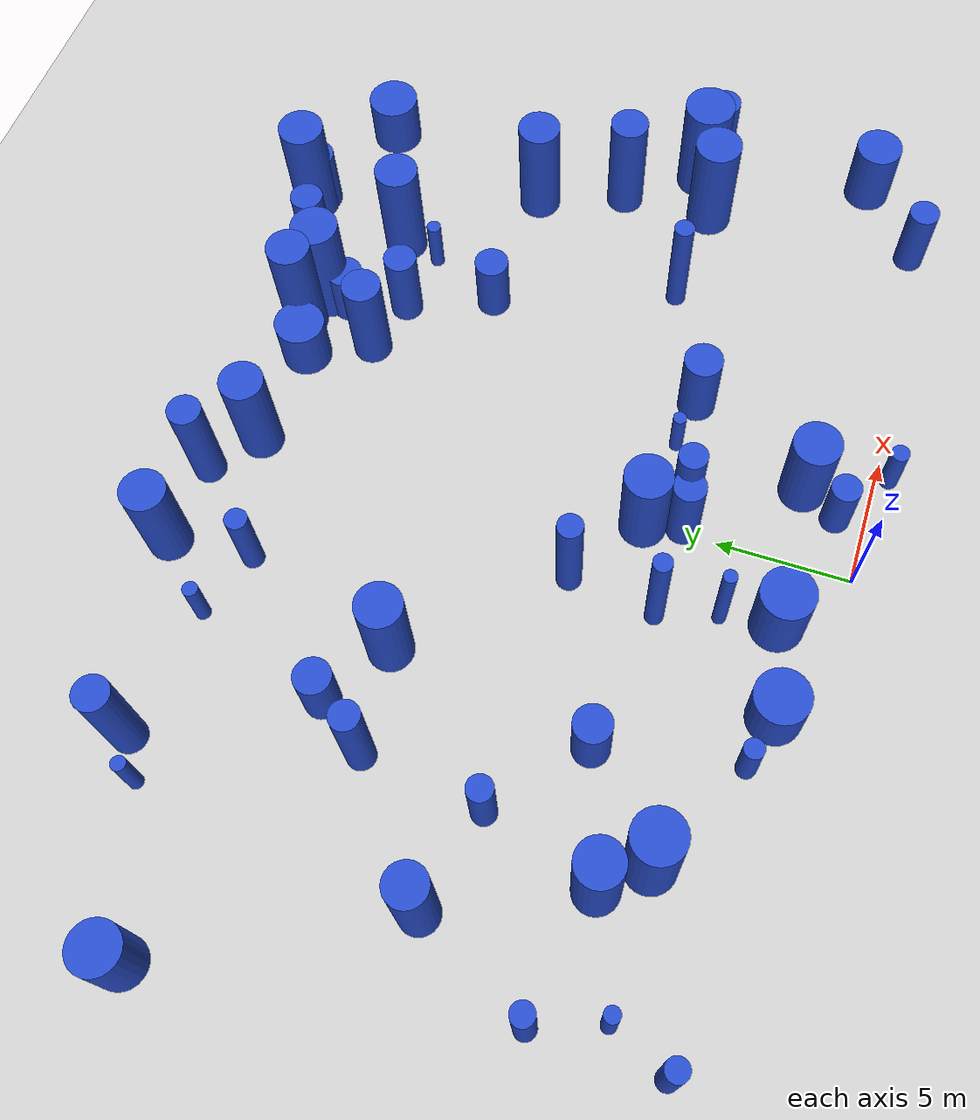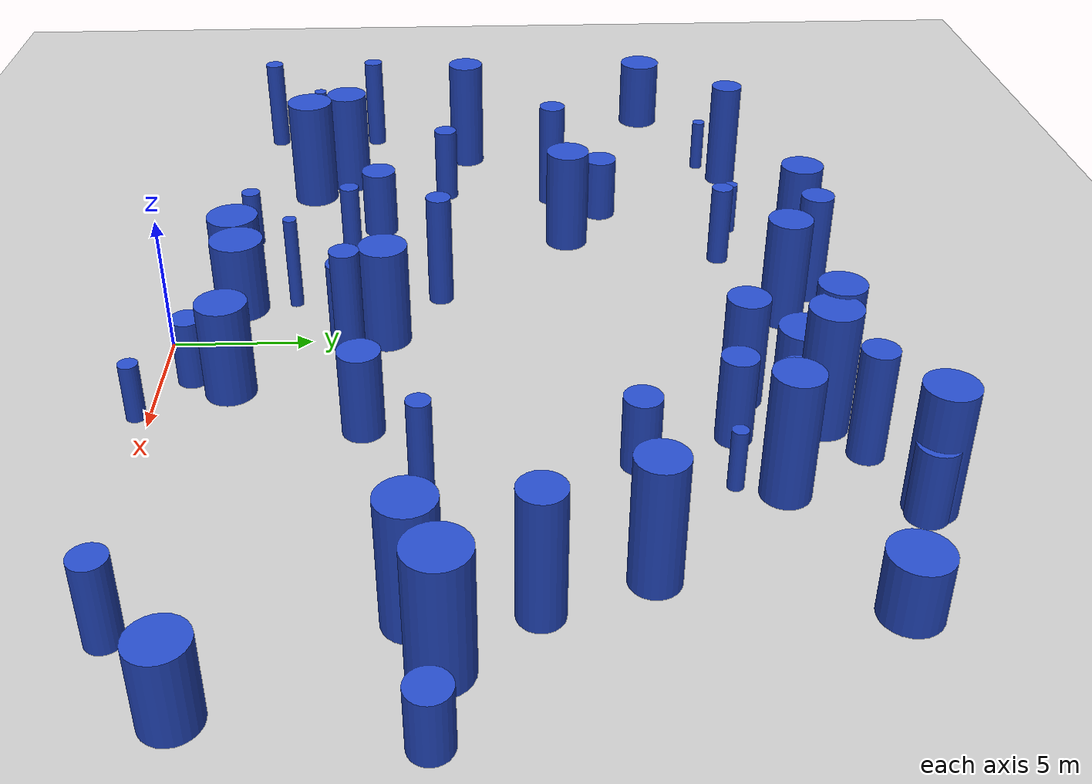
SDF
<sdf version="1.7">
 <world name="default">
  <model name="ground_plane">
   <static>1</static>
   <link name="link">
    <collision name="collision">
     <geometry><plane><normal>0 0 1</normal><size>100 100</size></plane></geometry>
     <surface>
      <contact><collide_bitmask>65535</collide_bitmask></contact>
      <friction><ode><mu>100</mu><mu2>50</mu2></ode></friction>
     </surface>
    </collision>
    <visual name="visual">
     <cast_shadows>0</cast_shadows>
     <geometry><plane><normal>0 0 1</normal><size>100 100</size></plane></geometry>
     <material>
      <script><uri>file://media/materials/scripts/gazebo.material</uri><name>Gazebo/Grey</name></script>
     </material>
    </visual>
   </link>
  </model>
  <model name="14">
   <static>0</static>
   <link name="link">
    <inertial>
     <mass>2</mass>
     <inertia>
      <ixx>0.836303</ixx>
      <ixy>0</ixy>
      <ixz>0</ixz>
      <iyy>0.836303</iyy>
      <iyz>0</iyz>
      <izz>0.0702342</izz>
     </inertia>
    </inertial>
    <collision name="collision">
     <geometry><cylinder><length>2.19251</length><radius>0.265017</radius></cylinder></geometry>
     <surface><contact><collide_without_contact>1</collide_without_contact></contact></surface>
    </collision>
    <visual name="visual">
     <geometry><cylinder><length>2.19251</length><radius>0.265017</radius></cylinder></geometry>
     <material>
      <script><uri>file://media/materials/scripts/gazebo.material</uri><name>Gazebo/Blue</name></script>
     </material>
    </visual>
    <gravity>0</gravity>
   </link>
   <pose>-14.3214 21.1932 1.09626 0 -0 0</pose>
  </model>
  <model name="32">
   <static>0</static>
   <link name="link">
    <inertial>
     <mass>2</mass>
     <inertia><ixx>3.14804</ixx><ixy>0</ixy><ixz>0</ixz><iyy>3.14804</iyy><iyz>0</iyz><izz>0.2772</izz></inertia>
    </inertial>
    <collision name="collision">
     <geometry><cylinder><length>4.24931</length><radius>0.526498</radius></cylinder></geometry>
     <surface><contact><collide_without_contact>1</collide_without_contact></contact></surface>
    </collision>
    <visual name="visual">
     <geometry><cylinder><length>4.24931</length><radius>0.526498</radius></cylinder></geometry>
     <material>
      <script><uri>file://media/materials/scripts/gazebo.material</uri><name>Gazebo/Blue</name></script>
     </material>
    </visual>
    <gravity>0</gravity>
   </link>
   <pose>0.903538 6.47443 2.12466 0 -0 0</pose>
  </model>
  <model name="58">
   <static>0</static>
   <link name="link">
    <inertial>
     <mass>2</mass>
     <inertia><ixx>1.90136</ixx><ixy>0</ixy><ixz>0</ixz><iyy>1.90136</iyy><iyz>0</iyz><izz>0.784577</izz></inertia>
    </inertial>
    <collision name="collision">
     <geometry><cylinder><length>3.00905</length><radius>0.885763</radius></cylinder></geometry>
     <surface><contact><collide_without_contact>1</collide_without_contact></contact></surface>
    </collision>
    <visual name="visual">
     <geometry><cylinder><length>3.00905</length><radius>0.885763</radius></cylinder></geometry>
     <material>
      <script><uri>file://media/materials/scripts/gazebo.material</uri><name>Gazebo/Blue</name></script>
     </material>
    </visual>
    <gravity>0</gravity>
   </link>
   <pose>-19.7092 19.1062 1.50453 0 -0 0</pose>
  </model>
  <model name="60">
   <static>0</static>
   <link name="link">
    <inertial>
     <mass>2</mass>
     <inertia><ixx>2.88942</ixx><ixy>0</ixy><ixz>0</ixz><iyy>2.88942</iyy><iyz>0</iyz><izz>0.374804</izz></inertia>
    </inertial>
    <collision name="collision">
     <geometry><cylinder><length>4.02643</length><radius>0.612213</radius></cylinder></geometry>
     <surface><contact><collide_without_contact>1</collide_without_contact></contact></surface>
    </collision>
    <visual name="visual">
     <geometry><cylinder><length>4.02643</length><radius>0.612213</radius></cylinder></geometry>
     <material>
      <script><uri>file://media/materials/scripts/gazebo.material</uri><name>Gazebo/Blue</name></script>
     </material>
    </visual>
    <gravity>0</gravity>
   </link>
   <pose>7.44601 23.3742 2.01321 0 -0 0</pose>
  </model>
  <model name="69">
   <static>0</static>
   <link name="link">
    <inertial>
     <mass>2</mass>
     <inertia><ixx>3.22963</ixx><ixy>0</ixy><ixz>0</ixz><iyy>3.22963</iyy><iyz>0</iyz><izz>0.217421</izz></inertia>
    </inertial>
    <collision name="collision">
     <geometry><cylinder><length>4.3273</length><radius>0.466285</radius></cylinder></geometry>
     <surface><contact><collide_without_contact>1</collide_without_contact></contact></surface>
    </collision>
    <visual name="visual">
     <geometry><cylinder><length>4.3273</length><radius>0.466285</radius></cylinder></geometry>
     <material>
      <script><uri>file://media/materials/scripts/gazebo.material</uri><name>Gazebo/Blue</name></script>
     </material>
    </visual>
    <gravity>0</gravity>
   </link>
   <pose>-2.92241 9.66779 2.16365 0 -0 0</pose>
  </model>
  <model name="83">
   <static>0</static>
   <link name="link">
    <inertial>
     <mass>2</mass>
     <inertia><ixx>3.76364</ixx><ixy>0</ixy><ixz>0</ixz><iyy>3.76364</iyy><iyz>0</iyz><izz>0.745798</izz></inertia>
    </inertial>
    <collision name="collision">
     <geometry><cylinder><length>4.51048</length><radius>0.863596</radius></cylinder></geometry>
     <surface><contact><collide_without_contact>1</collide_without_contact></contact></surface>
    </collision>
    <visual name="visual">
     <geometry><cylinder><length>4.51048</length><radius>0.863596</radius></cylinder></geometry>
     <material>
      <script><uri>file://media/materials/scripts/gazebo.material</uri><name>Gazebo/Blue</name></script>
     </material>
    </visual>
    <gravity>0</gravity>
   </link>
   <pose>10.1475 24.6467 2.25524 0 -0 0</pose>
  </model>
  <model name="86">
   <static>0</static>
   <link name="link">
    <inertial>
     <mass>2</mass>
     <inertia><ixx>1.70084</ixx><ixy>0</ixy><ixz>0</ixz><iyy>1.70084</iyy><iyz>0</iyz><izz>0.217344</izz></inertia>
    </inertial>
    <collision name="collision">
     <geometry><cylinder><length>3.09079</length><radius>0.466202</radius></cylinder></geometry>
     <surface><contact><collide_without_contact>1</collide_without_contact></contact></surface>
    </collision>
    <visual name="visual">
     <geometry><cylinder><length>3.09079</length><radius>0.466202</radius></cylinder></geometry>
     <material>
      <script><uri>file://media/materials/scripts/gazebo.material</uri><name>Gazebo/Blue</name></script>
     </material>
    </visual>
    <gravity>0</gravity>
   </link>
   <pose>-11.7966 9.82472 1.5454 0 -0 0</pose>
  </model>
  <model name="88">
   <static>0</static>
   <link name="link">
    <inertial>
     <mass>2</mass>
     <inertia><ixx>2.97237</ixx><ixy>0</ixy><ixz>0</ixz><iyy>2.97237</iyy><iyz>0</iyz><izz>0.674588</izz></inertia>
    </inertial>
    <collision name="collision">
     <geometry><cylinder><length>3.97624</length><radius>0.821333</radius></cylinder></geometry>
     <surface><contact><collide_without_contact>1</collide_without_contact></contact></surface>
    </collision>
    <visual name="visual">
     <geometry><cylinder><length>3.97624</length><radius>0.821333</radius></cylinder></geometry>
     <material>
      <script><uri>file://media/materials/scripts/gazebo.material</uri><name>Gazebo/Blue</name></script>
     </material>
    </visual>
    <gravity>0</gravity>
   </link>
   <pose>-5.84551 23.8684 1.98812 0 -0 0</pose>
  </model>
  <model name="108">
   <static>0</static>
   <link name="link">
    <inertial>
     <mass>2</mass>
     <inertia><ixx>2.89097</ixx><ixy>0</ixy><ixz>0</ixz><iyy>2.89097</iyy><iyz>0</iyz><izz>0.769265</izz></inertia>
    </inertial>
    <collision name="collision">
     <geometry><cylinder><length>3.87789</length><radius>0.877078</radius></cylinder></geometry>
     <surface><contact><collide_without_contact>1</collide_without_contact></contact></surface>
    </collision>
    <visual name="visual">
     <geometry><cylinder><length>3.87789</length><radius>0.877078</radius></cylinder></geometry>
     <material>
      <script><uri>file://media/materials/scripts/gazebo.material</uri><name>Gazebo/Blue</name></script>
     </material>
    </visual>
    <gravity>0</gravity>
   </link>
   <pose>-0.109157 7.73409 1.93895 0 -0 0</pose>
  </model>
  <model name="111">
   <static>0</static>
   <link name="link">
    <inertial>
     <mass>2</mass>
     <inertia><ixx>1.61305</ixx><ixy>0</ixy><ixz>0</ixz><iyy>1.61305</iyy><iyz>0</iyz><izz>0.331208</izz></inertia>
    </inertial>
    <collision name="collision">
     <geometry><cylinder><length>2.94697</length><radius>0.575506</radius></cylinder></geometry>
     <surface><contact><collide_without_contact>1</collide_without_contact></contact></surface>
    </collision>
    <visual name="visual">
     <geometry><cylinder><length>2.94697</length><radius>0.575506</radius></cylinder></geometry>
     <material>
      <script><uri>file://media/materials/scripts/gazebo.material</uri><name>Gazebo/Blue</name></script>
     </material>
    </visual>
    <gravity>0</gravity>
   </link>
   <pose>14.7173 0.789636 1.47349 0 -0 0</pose>
  </model>
  <model name="121">
   <static>0</static>
   <link name="link">
    <inertial>
     <mass>2</mass>
     <inertia>
      <ixx>0.701249</ixx>
      <ixy>0</ixy>
      <ixz>0</ixz>
      <iyy>0.701249</iyy>
      <iyz>0</iyz>
      <izz>0.0646593</izz>
     </inertia>
    </inertial>
    <collision name="collision">
     <geometry><cylinder><length>2.00338</length><radius>0.254282</radius></cylinder></geometry>
     <surface><contact><collide_without_contact>1</collide_without_contact></contact></surface>
    </collision>
    <visual name="visual">
     <geometry><cylinder><length>2.00338</length><radius>0.254282</radius></cylinder></geometry>
     <material>
      <script><uri>file://media/materials/scripts/gazebo.material</uri><name>Gazebo/Blue</name></script>
     </material>
    </visual>
    <gravity>0</gravity>
   </link>
   <pose>3.54133 7.47149 1.00169 0 -0 0</pose>
  </model>
  <model name="150">
   <static>0</static>
   <link name="link">
    <inertial>
     <mass>2</mass>
     <inertia><ixx>3.53297</ixx><ixy>0</ixy><ixz>0</ixz><iyy>3.53297</iyy><iyz>0</iyz><izz>0.946006</izz></inertia>
    </inertial>
    <collision name="collision">
     <geometry><cylinder><length>4.28484</length><radius>0.972629</radius></cylinder></geometry>
     <surface><contact><collide_without_contact>1</collide_without_contact></contact></surface>
    </collision>
    <visual name="visual">
     <geometry><cylinder><length>4.28484</length><radius>0.972629</radius></cylinder></geometry>
     <material>
      <script><uri>file://media/materials/scripts/gazebo.material</uri><name>Gazebo/Blue</name></script>
     </material>
    </visual>
    <gravity>0</gravity>
   </link>
   <pose>16.2141 9.86612 2.14242 0 -0 0</pose>
  </model>
  <model name="161">
   <static>0</static>
   <link name="link">
    <inertial>
     <mass>2</mass>
     <inertia><ixx>4.00763</ixx><ixy>0</ixy><ixz>0</ixz><iyy>4.00763</iyy><iyz>0</iyz><izz>0.65728</izz></inertia>
    </inertial>
    <collision name="collision">
     <geometry><cylinder><length>4.69829</length><radius>0.810728</radius></cylinder></geometry>
     <surface><contact><collide_without_contact>1</collide_without_contact></contact></surface>
    </collision>
    <visual name="visual">
     <geometry><cylinder><length>4.69829</length><radius>0.810728</radius></cylinder></geometry>
     <material>
      <script><uri>file://media/materials/scripts/gazebo.material</uri><name>Gazebo/Blue</name></script>
     </material>
    </visual>
    <gravity>0</gravity>
   </link>
   <pose>4.56884 22.8225 2.34915 0 -0 0</pose>
  </model>
  <model name="168">
   <static>0</static>
   <link name="link">
    <inertial>
     <mass>2</mass>
     <inertia><ixx>1.88036</ixx><ixy>0</ixy><ixz>0</ixz><iyy>1.88036</iyy><iyz>0</iyz><izz>0.387286</izz></inertia>
    </inertial>
    <collision name="collision">
     <geometry><cylinder><length>3.18124</length><radius>0.622323</radius></cylinder></geometry>
     <surface><contact><collide_without_contact>1</collide_without_contact></contact></surface>
    </collision>
    <visual name="visual">
     <geometry><cylinder><length>3.18124</length><radius>0.622323</radius></cylinder></geometry>
     <material>
      <script><uri>file://media/materials/scripts/gazebo.material</uri><name>Gazebo/Blue</name></script>
     </material>
    </visual>
    <gravity>0</gravity>
   </link>
   <pose>6.38596 19.2926 1.59062 0 -0 0</pose>
  </model>
  <model name="173">
   <static>0</static>
   <link name="link">
    <inertial>
     <mass>2</mass>
     <inertia><ixx>3.90189</ixx><ixy>0</ixy><ixz>0</ixz><iyy>3.90189</iyy><iyz>0</iyz><izz>0.540275</izz></inertia>
    </inertial>
    <collision name="collision">
     <geometry><cylinder><length>4.66803</length><radius>0.735034</radius></cylinder></geometry>
     <surface><contact><collide_without_contact>1</collide_without_contact></contact></surface>
    </collision>
    <visual name="visual">
     <geometry><cylinder><length>4.66803</length><radius>0.735034</radius></cylinder></geometry>
     <material>
      <script><uri>file://media/materials/scripts/gazebo.material</uri><name>Gazebo/Blue</name></script>
     </material>
    </visual>
    <gravity>0</gravity>
   </link>
   <pose>-15.4849 10.7334 2.33402 0 -0 0</pose>
  </model>
  <model name="177">
   <static>0</static>
   <link name="link">
    <inertial>
     <mass>2</mass>
     <inertia><ixx>0.95271</ixx><ixy>0</ixy><ixz>0</ixz><iyy>0.95271</iyy><iyz>0</iyz><izz>0.135392</izz></inertia>
    </inertial>
    <collision name="collision">
     <geometry><cylinder><length>2.30436</length><radius>0.367956</radius></cylinder></geometry>
     <surface><contact><collide_without_contact>1</collide_without_contact></contact></surface>
    </collision>
    <visual name="visual">
     <geometry><cylinder><length>2.30436</length><radius>0.367956</radius></cylinder></geometry>
     <material>
      <script><uri>file://media/materials/scripts/gazebo.material</uri><name>Gazebo/Blue</name></script>
     </material>
    </visual>
    <gravity>0</gravity>
   </link>
   <pose>-7.74465 1.97338 1.15218 0 -0 0</pose>
  </model>
  <model name="179">
   <static>0</static>
   <link name="link">
    <inertial>
     <mass>2</mass>
     <inertia><ixx>1.22891</ixx><ixy>0</ixy><ixz>0</ixz><iyy>1.22891</iyy><iyz>0</iyz><izz>0.890975</izz></inertia>
    </inertial>
    <collision name="collision">
     <geometry><cylinder><length>2.16807</length><radius>0.943915</radius></cylinder></geometry>
     <surface><contact><collide_without_contact>1</collide_without_contact></contact></surface>
    </collision>
    <visual name="visual">
     <geometry><cylinder><length>2.16807</length><radius>0.943915</radius></cylinder></geometry>
     <material>
      <script><uri>file://media/materials/scripts/gazebo.material</uri><name>Gazebo/Blue</name></script>
     </material>
    </visual>
    <gravity>0</gravity>
   </link>
   <pose>3.12721 22.2145 1.08403 0 -0 0</pose>
  </model>
  <model name="184">
   <static>0</static>
   <link name="link">
    <inertial>
     <mass>2</mass>
     <inertia><ixx>1.34764</ixx><ixy>0</ixy><ixz>0</ixz><iyy>1.34764</iyy><iyz>0</iyz><izz>0.412127</izz></inertia>
    </inertial>
    <collision name="collision">
     <geometry><cylinder><length>2.61714</length><radius>0.641971</radius></cylinder></geometry>
     <surface><contact><collide_without_contact>1</collide_without_contact></contact></surface>
    </collision>
    <visual name="visual">
     <geometry><cylinder><length>2.61714</length><radius>0.641971</radius></cylinder></geometry>
     <material>
      <script><uri>file://media/materials/scripts/gazebo.material</uri><name>Gazebo/Blue</name></script>
     </material>
    </visual>
    <gravity>0</gravity>
   </link>
   <pose>7.64515 16.0887 1.30857 0 -0 0</pose>
  </model>
  <model name="185">
   <static>0</static>
   <link name="link">
    <inertial>
     <mass>2</mass>
     <inertia><ixx>2.98915</ixx><ixy>0</ixy><ixz>0</ixz><iyy>2.98915</iyy><iyz>0</iyz><izz>0.538537</izz></inertia>
    </inertial>
    <collision name="collision">
     <geometry><cylinder><length>4.03971</length><radius>0.73385</radius></cylinder></geometry>
     <surface><contact><collide_without_contact>1</collide_without_contact></contact></surface>
    </collision>
    <visual name="visual">
     <geometry><cylinder><length>4.03971</length><radius>0.73385</radius></cylinder></geometry>
     <material>
      <script><uri>file://media/materials/scripts/gazebo.material</uri><name>Gazebo/Blue</name></script>
     </material>
    </visual>
    <gravity>0</gravity>
   </link>
   <pose>4.21201 19.9005 2.01986 0 -0 0</pose>
  </model>
  <model name="189">
   <static>0</static>
   <link name="link">
    <inertial>
     <mass>2</mass>
     <inertia><ixx>2.52915</ixx><ixy>0</ixy><ixz>0</ixz><iyy>2.52915</iyy><iyz>0</iyz><izz>0.784996</izz></inertia>
    </inertial>
    <collision name="collision">
     <geometry><cylinder><length>3.58049</length><radius>0.886</radius></cylinder></geometry>
     <surface><contact><collide_without_contact>1</collide_without_contact></contact></surface>
    </collision>
    <visual name="visual">
     <geometry><cylinder><length>3.58049</length><radius>0.886</radius></cylinder></geometry>
     <material>
      <script><uri>file://media/materials/scripts/gazebo.material</uri><name>Gazebo/Blue</name></script>
     </material>
    </visual>
    <gravity>0</gravity>
   </link>
   <pose>3.06051 2.51893 1.79025 0 -0 0</pose>
  </model>
  <model name="194">
   <static>0</static>
   <link name="link">
    <inertial>
     <mass>2</mass>
     <inertia><ixx>3.51472</ixx><ixy>0</ixy><ixz>0</ixz><iyy>3.51472</iyy><iyz>0</iyz><izz>0.397602</izz></inertia>
    </inertial>
    <collision name="collision">
     <geometry><cylinder><length>4.46044</length><radius>0.630557</radius></cylinder></geometry>
     <surface><contact><collide_without_contact>1</collide_without_contact></contact></surface>
    </collision>
    <visual name="visual">
     <geometry><cylinder><length>4.46044</length><radius>0.630557</radius></cylinder></geometry>
     <material>
      <script><uri>file://media/materials/scripts/gazebo.material</uri><name>Gazebo/Blue</name></script>
     </material>
    </visual>
    <gravity>0</gravity>
   </link>
   <pose>-12.9568 22.0724 2.23022 0 -0 0</pose>
  </model>
  <model name="210">
   <static>0</static>
   <link name="link">
    <inertial>
     <mass>2</mass>
     <inertia><ixx>1.78793</ixx><ixy>0</ixy><ixz>0</ixz><iyy>1.78793</iyy><iyz>0</iyz><izz>0.167015</izz></inertia>
    </inertial>
    <collision name="collision">
     <geometry><cylinder><length>3.1979</length><radius>0.408674</radius></cylinder></geometry>
     <surface><contact><collide_without_contact>1</collide_without_contact></contact></surface>
    </collision>
    <visual name="visual">
     <geometry><cylinder><length>3.1979</length><radius>0.408674</radius></cylinder></geometry>
     <material>
      <script><uri>file://media/materials/scripts/gazebo.material</uri><name>Gazebo/Blue</name></script>
     </material>
    </visual>
    <gravity>0</gravity>
   </link>
   <pose>-5.58543 20.7385 1.59895 0 -0 0</pose>
  </model>
  <model name="218">
   <static>0</static>
   <link name="link">
    <inertial>
     <mass>2</mass>
     <inertia><ixx>3.32031</ixx><ixy>0</ixy><ixz>0</ixz><iyy>3.32031</iyy><iyz>0</iyz><izz>0.28159</izz></inertia>
    </inertial>
    <collision name="collision">
     <geometry><cylinder><length>4.36773</length><radius>0.530651</radius></cylinder></geometry>
     <surface><contact><collide_without_contact>1</collide_without_contact></contact></surface>
    </collision>
    <visual name="visual">
     <geometry><cylinder><length>4.36773</length><radius>0.530651</radius></cylinder></geometry>
     <material>
      <script><uri>file://media/materials/scripts/gazebo.material</uri><name>Gazebo/Blue</name></script>
     </material>
    </visual>
    <gravity>0</gravity>
   </link>
   <pose>-11.2258 14.3699 2.18387 0 -0 0</pose>
  </model>
  <model name="232">
   <static>0</static>
   <link name="link">
    <inertial>
     <mass>2</mass>
     <inertia><ixx>3.41433</ixx><ixy>0</ixy><ixz>0</ixz><iyy>3.41433</iyy><iyz>0</iyz><izz>0.690269</izz></inertia>
    </inertial>
    <collision name="collision">
     <geometry><cylinder><length>4.29129</length><radius>0.830824</radius></cylinder></geometry>
     <surface><contact><collide_without_contact>1</collide_without_contact></contact></surface>
    </collision>
    <visual name="visual">
     <geometry><cylinder><length>4.29129</length><radius>0.830824</radius></cylinder></geometry>
     <material>
      <script><uri>file://media/materials/scripts/gazebo.material</uri><name>Gazebo/Blue</name></script>
     </material>
    </visual>
    <gravity>0</gravity>
   </link>
   <pose>-13.0922 5.58604 2.14565 0 -0 0</pose>
  </model>
  <model name="236">
   <static>0</static>
   <link name="link">
    <inertial>
     <mass>2</mass>
     <inertia><ixx>3.5821</ixx><ixy>0</ixy><ixz>0</ixz><iyy>3.5821</iyy><iyz>0</iyz><izz>0.659814</izz></inertia>
    </inertial>
    <collision name="collision">
     <geometry><cylinder><length>4.41737</length><radius>0.812289</radius></cylinder></geometry>
     <surface><contact><collide_without_contact>1</collide_without_contact></contact></surface>
    </collision>
    <visual name="visual">
     <geometry><cylinder><length>4.41737</length><radius>0.812289</radius></cylinder></geometry>
     <material>
      <script><uri>file://media/materials/scripts/gazebo.material</uri><name>Gazebo/Blue</name></script>
     </material>
    </visual>
    <gravity>0</gravity>
   </link>
   <pose>13.0117 15.8898 2.20868 0 -0 0</pose>
  </model>
  <model name="239">
   <static>0</static>
   <link name="link">
    <inertial>
     <mass>2</mass>
     <inertia><ixx>2.08851</ixx><ixy>0</ixy><ixz>0</ixz><iyy>2.08851</iyy><iyz>0</iyz><izz>0.364489</izz></inertia>
    </inertial>
    <collision name="collision">
     <geometry><cylinder><length>3.38195</length><radius>0.603729</radius></cylinder></geometry>
     <surface><contact><collide_without_contact>1</collide_without_contact></contact></surface>
    </collision>
    <visual name="visual">
     <geometry><cylinder><length>3.38195</length><radius>0.603729</radius></cylinder></geometry>
     <material>
      <script><uri>file://media/materials/scripts/gazebo.material</uri><name>Gazebo/Blue</name></script>
     </material>
    </visual>
    <gravity>0</gravity>
   </link>
   <pose>0.197393 6.31886 1.69098 0 -0 0</pose>
  </model>
  <model name="240">
   <static>0</static>
   <link name="link">
    <inertial>
     <mass>2</mass>
     <inertia><ixx>1.48257</ixx><ixy>0</ixy><ixz>0</ixz><iyy>1.48257</iyy><iyz>0</iyz><izz>0.465862</izz></inertia>
    </inertial>
    <collision name="collision">
     <geometry><cylinder><length>2.73821</length><radius>0.682541</radius></cylinder></geometry>
     <surface><contact><collide_without_contact>1</collide_without_contact></contact></surface>
    </collision>
    <visual name="visual">
     <geometry><cylinder><length>2.73821</length><radius>0.682541</radius></cylinder></geometry>
     <material>
      <script><uri>file://media/materials/scripts/gazebo.material</uri><name>Gazebo/Blue</name></script>
     </material>
    </visual>
    <gravity>0</gravity>
   </link>
   <pose>-8.65281 7.1052 1.36911 0 -0 0</pose>
  </model>
  <model name="241">
   <static>0</static>
   <link name="link">
    <inertial>
     <mass>2</mass>
     <inertia><ixx>3.19417</ixx><ixy>0</ixy><ixz>0</ixz><iyy>3.19417</iyy><iyz>0</iyz><izz>0.372242</izz></inertia>
    </inertial>
    <collision name="collision">
     <geometry><cylinder><length>4.24833</length><radius>0.610117</radius></cylinder></geometry>
     <surface><contact><collide_without_contact>1</collide_without_contact></contact></surface>
    </collision>
    <visual name="visual">
     <geometry><cylinder><length>4.24833</length><radius>0.610117</radius></cylinder></geometry>
     <material>
      <script><uri>file://media/materials/scripts/gazebo.material</uri><name>Gazebo/Blue</name></script>
     </material>
    </visual>
    <gravity>0</gravity>
   </link>
   <pose>-2.67628 23.7279 2.12416 0 -0 0</pose>
  </model>
  <model name="242">
   <static>0</static>
   <link name="link">
    <inertial>
     <mass>2</mass>
     <inertia><ixx>3.55214</ixx><ixy>0</ixy><ixz>0</ixz><iyy>3.55214</iyy><iyz>0</iyz><izz>0.122529</izz></inertia>
    </inertial>
    <collision name="collision">
     <geometry><cylinder><length>4.5766</length><radius>0.350041</radius></cylinder></geometry>
     <surface><contact><collide_without_contact>1</collide_without_contact></contact></surface>
    </collision>
    <visual name="visual">
     <geometry><cylinder><length>4.5766</length><radius>0.350041</radius></cylinder></geometry>
     <material>
      <script><uri>file://media/materials/scripts/gazebo.material</uri><name>Gazebo/Blue</name></script>
     </material>
    </visual>
    <gravity>0</gravity>
   </link>
   <pose>-3.38803 6.38543 2.2883 0 -0 0</pose>
  </model>
  <model name="251">
   <static>0</static>
   <link name="link">
    <inertial>
     <mass>2</mass>
     <inertia>
      <ixx>2.22055</ixx>
      <ixy>0</ixy>
      <ixz>0</ixz>
      <iyy>2.22055</iyy>
      <iyz>0</iyz>
      <izz>0.0647104</izz>
     </inertia>
    </inertial>
    <collision name="collision">
     <geometry><cylinder><length>3.62342</length><radius>0.254382</radius></cylinder></geometry>
     <surface><contact><collide_without_contact>1</collide_without_contact></contact></surface>
    </collision>
    <visual name="visual">
     <geometry><cylinder><length>3.62342</length><radius>0.254382</radius></cylinder></geometry>
     <material>
      <script><uri>file://media/materials/scripts/gazebo.material</uri><name>Gazebo/Blue</name></script>
     </material>
    </visual>
    <gravity>0</gravity>
   </link>
   <pose>-2.75327 4.18158 1.81171 0 -0 0</pose>
  </model>
  <model name="257">
   <static>0</static>
   <link name="link">
    <inertial>
     <mass>2</mass>
     <inertia><ixx>3.0853</ixx><ixy>0</ixy><ixz>0</ixz><iyy>3.0853</iyy><iyz>0</iyz><izz>0.704995</izz></inertia>
    </inertial>
    <collision name="collision">
     <geometry><cylinder><length>4.04929</length><radius>0.83964</radius></cylinder></geometry>
     <surface><contact><collide_without_contact>1</collide_without_contact></contact></surface>
    </collision>
    <visual name="visual">
     <geometry><cylinder><length>4.04929</length><radius>0.83964</radius></cylinder></geometry>
     <material>
      <script><uri>file://media/materials/scripts/gazebo.material</uri><name>Gazebo/Blue</name></script>
     </material>
    </visual>
    <gravity>0</gravity>
   </link>
   <pose>-7.36958 14.7669 2.02465 0 -0 0</pose>
  </model>
  <model name="267">
   <static>0</static>
   <link name="link">
    <inertial>
     <mass>2</mass>
     <inertia><ixx>1.28925</ixx><ixy>0</ixy><ixz>0</ixz><iyy>1.28925</iyy><iyz>0</iyz><izz>0.944616</izz></inertia>
    </inertial>
    <collision name="collision">
     <geometry><cylinder><length>2.21397</length><radius>0.971913</radius></cylinder></geometry>
     <surface><contact><collide_without_contact>1</collide_without_contact></contact></surface>
    </collision>
    <visual name="visual">
     <geometry><cylinder><length>2.21397</length><radius>0.971913</radius></cylinder></geometry>
     <material>
      <script><uri>file://media/materials/scripts/gazebo.material</uri><name>Gazebo/Blue</name></script>
     </material>
    </visual>
    <gravity>0</gravity>
   </link>
   <pose>14.6058 22.7647 1.10698 0 -0 0</pose>
  </model>
  <model name="290">
   <static>0</static>
   <link name="link">
    <inertial>
     <mass>2</mass>
     <inertia><ixx>3.24824</ixx><ixy>0</ixy><ixz>0</ixz><iyy>3.24824</iyy><iyz>0</iyz><izz>0.1463</izz></inertia>
    </inertial>
    <collision name="collision">
     <geometry><cylinder><length>4.36469</length><radius>0.382492</radius></cylinder></geometry>
     <surface><contact><collide_without_contact>1</collide_without_contact></contact></surface>
    </collision>
    <visual name="visual">
     <geometry><cylinder><length>4.36469</length><radius>0.382492</radius></cylinder></geometry>
     <material>
      <script><uri>file://media/materials/scripts/gazebo.material</uri><name>Gazebo/Blue</name></script>
     </material>
    </visual>
    <gravity>0</gravity>
   </link>
   <pose>10.0614 9.26594 2.18235 0 -0 0</pose>
  </model>
  <model name="291">
   <static>0</static>
   <link name="link">
    <inertial>
     <mass>2</mass>
     <inertia><ixx>2.62756</ixx><ixy>0</ixy><ixz>0</ixz><iyy>2.62756</iyy><iyz>0</iyz><izz>0.149384</izz></inertia>
    </inertial>
    <collision name="collision">
     <geometry><cylinder><length>3.91372</length><radius>0.386502</radius></cylinder></geometry>
     <surface><contact><collide_without_contact>1</collide_without_contact></contact></surface>
    </collision>
    <visual name="visual">
     <geometry><cylinder><length>3.91372</length><radius>0.386502</radius></cylinder></geometry>
     <material>
      <script><uri>file://media/materials/scripts/gazebo.material</uri><name>Gazebo/Blue</name></script>
     </material>
    </visual>
    <gravity>0</gravity>
   </link>
   <pose>-17.7882 1.91749 1.95686 0 -0 0</pose>
  </model>
  <model name="314">
   <static>0</static>
   <link name="link">
    <inertial>
     <mass>2</mass>
     <inertia><ixx>3.55892</ixx><ixy>0</ixy><ixz>0</ixz><iyy>3.55892</iyy><iyz>0</iyz><izz>0.800275</izz></inertia>
    </inertial>
    <collision name="collision">
     <geometry><cylinder><length>4.35347</length><radius>0.894581</radius></cylinder></geometry>
     <surface><contact><collide_without_contact>1</collide_without_contact></contact></surface>
    </collision>
    <visual name="visual">
     <geometry><cylinder><length>4.35347</length><radius>0.894581</radius></cylinder></geometry>
     <material>
      <script><uri>file://media/materials/scripts/gazebo.material</uri><name>Gazebo/Blue</name></script>
     </material>
    </visual>
    <gravity>0</gravity>
   </link>
   <pose>14.3442 9.04253 2.17673 0 -0 0</pose>
  </model>
  <model name="318">
   <static>0</static>
   <link name="link">
    <inertial>
     <mass>2</mass>
     <inertia>
      <ixx>1.46174</ixx>
      <ixy>0</ixy>
      <ixz>0</ixz>
      <iyy>1.46174</iyy>
      <iyz>0</iyz>
      <izz>0.0749336</izz>
     </inertia>
    </inertial>
    <collision name="collision">
     <geometry><cylinder><length>2.92329</length><radius>0.27374</radius></cylinder></geometry>
     <surface><contact><collide_without_contact>1</collide_without_contact></contact></surface>
    </collision>
    <visual name="visual">
     <geometry><cylinder><length>2.92329</length><radius>0.27374</radius></cylinder></geometry>
     <material>
      <script><uri>file://media/materials/scripts/gazebo.material</uri><name>Gazebo/Blue</name></script>
     </material>
    </visual>
    <gravity>0</gravity>
   </link>
   <pose>-16.8465 4.03749 1.46164 0 -0 0</pose>
  </model>
  <model name="322">
   <static>0</static>
   <link name="link">
    <inertial>
     <mass>2</mass>
     <inertia><ixx>1.97244</ixx><ixy>0</ixy><ixz>0</ixz><iyy>1.97244</iyy><iyz>0</iyz><izz>0.979031</izz></inertia>
    </inertial>
    <collision name="collision">
     <geometry><cylinder><length>2.98288</length><radius>0.98946</radius></cylinder></geometry>
     <surface><contact><collide_without_contact>1</collide_without_contact></contact></surface>
    </collision>
    <visual name="visual">
     <geometry><cylinder><length>2.98288</length><radius>0.98946</radius></cylinder></geometry>
     <material>
      <script><uri>file://media/materials/scripts/gazebo.material</uri><name>Gazebo/Blue</name></script>
     </material>
    </visual>
    <gravity>0</gravity>
   </link>
   <pose>-2.45472 2.18281 1.49144 0 -0 0</pose>
  </model>
  <model name="350">
   <static>0</static>
   <link name="link">
    <inertial>
     <mass>2</mass>
     <inertia>
      <ixx>0.956007</ixx>
      <ixy>0</ixy>
      <ixz>0</ixz>
      <iyy>0.956007</iyy>
      <iyz>0</iyz>
      <izz>0.428616</izz>
     </inertia>
    </inertial>
    <collision name="collision">
     <geometry><cylinder><length>2.10955</length><radius>0.654688</radius></cylinder></geometry>
     <surface><contact><collide_without_contact>1</collide_without_contact></contact></surface>
    </collision>
    <visual name="visual">
     <geometry><cylinder><length>2.10955</length><radius>0.654688</radius></cylinder></geometry>
     <material>
      <script><uri>file://media/materials/scripts/gazebo.material</uri><name>Gazebo/Blue</name></script>
     </material>
    </visual>
    <gravity>0</gravity>
   </link>
   <pose>18.6652 9.64075 1.05477 0 -0 0</pose>
  </model>
  <model name="362">
   <static>0</static>
   <link name="link">
    <inertial>
     <mass>2</mass>
     <inertia>
      <ixx>0.827385</ixx>
      <ixy>0</ixy>
      <ixz>0</ixz>
      <iyy>0.827385</iyy>
      <iyz>0</iyz>
      <izz>0.0742829</izz>
     </inertia>
    </inertial>
    <collision name="collision">
     <geometry><cylinder><length>2.17749</length><radius>0.272549</radius></cylinder></geometry>
     <surface><contact><collide_without_contact>1</collide_without_contact></contact></surface>
    </collision>
    <visual name="visual">
     <geometry><cylinder><length>2.17749</length><radius>0.272549</radius></cylinder></geometry>
     <material>
      <script><uri>file://media/materials/scripts/gazebo.material</uri><name>Gazebo/Blue</name></script>
     </material>
    </visual>
    <gravity>0</gravity>
   </link>
   <pose>8.8942 18.9206 1.08874 0 -0 0</pose>
  </model>
  <model name="366">
   <static>0</static>
   <link name="link">
    <inertial>
     <mass>2</mass>
     <inertia>
      <ixx>0.806267</ixx>
      <ixy>0</ixy>
      <ixz>0</ixz>
      <iyy>0.806267</iyy>
      <iyz>0</iyz>
      <izz>0.0705688</izz>
     </inertia>
    </inertial>
    <collision name="collision">
     <geometry><cylinder><length>2.15079</length><radius>0.265648</radius></cylinder></geometry>
     <surface><contact><collide_without_contact>1</collide_without_contact></contact></surface>
    </collision>
    <visual name="visual">
     <geometry><cylinder><length>2.15079</length><radius>0.265648</radius></cylinder></geometry>
     <material>
      <script><uri>file://media/materials/scripts/gazebo.material</uri><name>Gazebo/Blue</name></script>
     </material>
    </visual>
    <gravity>0</gravity>
   </link>
   <pose>15.126 23.151 1.07539 0 -0 0</pose>
  </model>
  <model name="372">
   <static>0</static>
   <link name="link">
    <inertial>
     <mass>2</mass>
     <inertia><ixx>1.43992</ixx><ixy>0</ixy><ixz>0</ixz><iyy>1.43992</iyy><iyz>0</iyz><izz>0.467893</izz></inertia>
    </inertial>
    <collision name="collision">
     <geometry><cylinder><length>2.68995</length><radius>0.684027</radius></cylinder></geometry>
     <surface><contact><collide_without_contact>1</collide_without_contact></contact></surface>
    </collision>
    <visual name="visual">
     <geometry><cylinder><length>2.68995</length><radius>0.684027</radius></cylinder></geometry>
     <material>
      <script><uri>file://media/materials/scripts/gazebo.material</uri><name>Gazebo/Blue</name></script>
     </material>
    </visual>
    <gravity>0</gravity>
   </link>
   <pose>10.5164 24.4448 1.34498 0 -0 0</pose>
  </model>
  <model name="375">
   <static>0</static>
   <link name="link">
    <inertial>
     <mass>2</mass>
     <inertia><ixx>3.23791</ixx><ixy>0</ixy><ixz>0</ixz><iyy>3.23791</iyy><iyz>0</iyz><izz>0.656062</izz></inertia>
    </inertial>
    <collision name="collision">
     <geometry><cylinder><length>4.17843</length><radius>0.809976</radius></cylinder></geometry>
     <surface><contact><collide_without_contact>1</collide_without_contact></contact></surface>
    </collision>
    <visual name="visual">
     <geometry><cylinder><length>4.17843</length><radius>0.809976</radius></cylinder></geometry>
     <material>
      <script><uri>file://media/materials/scripts/gazebo.material</uri><name>Gazebo/Blue</name></script>
     </material>
    </visual>
    <gravity>0</gravity>
   </link>
   <pose>-0.955614 22.3607 2.08922 0 -0 0</pose>
  </model>
  <model name="381">
   <static>0</static>
   <link name="link">
    <inertial>
     <mass>2</mass>
     <inertia><ixx>3.57821</ixx><ixy>0</ixy><ixz>0</ixz><iyy>3.57821</iyy><iyz>0</iyz><izz>0.531463</izz></inertia>
    </inertial>
    <collision name="collision">
     <geometry><cylinder><length>4.45812</length><radius>0.729015</radius></cylinder></geometry>
     <surface><contact><collide_without_contact>1</collide_without_contact></contact></surface>
    </collision>
    <visual name="visual">
     <geometry><cylinder><length>4.45812</length><radius>0.729015</radius></cylinder></geometry>
     <material>
      <script><uri>file://media/materials/scripts/gazebo.material</uri><name>Gazebo/Blue</name></script>
     </material>
    </visual>
    <gravity>0</gravity>
   </link>
   <pose>14.2391 12.5903 2.22906 0 -0 0</pose>
  </model>
  <model name="387">
   <static>0</static>
   <link name="link">
    <inertial>
     <mass>2</mass>
     <inertia><ixx>1.8939</ixx><ixy>0</ixy><ixz>0</ixz><iyy>1.8939</iyy><iyz>0</iyz><izz>0.522387</izz></inertia>
    </inertial>
    <collision name="collision">
     <geometry><cylinder><length>3.12989</length><radius>0.722763</radius></cylinder></geometry>
     <surface><contact><collide_without_contact>1</collide_without_contact></contact></surface>
    </collision>
    <visual name="visual">
     <geometry><cylinder><length>3.12989</length><radius>0.722763</radius></cylinder></geometry>
     <material>
      <script><uri>file://media/materials/scripts/gazebo.material</uri><name>Gazebo/Blue</name></script>
     </material>
    </visual>
    <gravity>0</gravity>
   </link>
   <pose>5.48245 7.20023 1.56495 0 -0 0</pose>
  </model>
  <model name="404">
   <static>0</static>
   <link name="link">
    <inertial>
     <mass>2</mass>
     <inertia><ixx>3.74315</ixx><ixy>0</ixy><ixz>0</ixz><iyy>3.74315</iyy><iyz>0</iyz><izz>0.845685</izz></inertia>
    </inertial>
    <collision name="collision">
     <geometry><cylinder><length>4.46339</length><radius>0.919611</radius></cylinder></geometry>
     <surface><contact><collide_without_contact>1</collide_without_contact></contact></surface>
    </collision>
    <visual name="visual">
     <geometry><cylinder><length>4.46339</length><radius>0.919611</radius></cylinder></geometry>
     <material>
      <script><uri>file://media/materials/scripts/gazebo.material</uri><name>Gazebo/Blue</name></script>
     </material>
    </visual>
    <gravity>0</gravity>
   </link>
   <pose>-11.8669 4.12753 2.23169 0 -0 0</pose>
  </model>
  <model name="410">
   <static>0</static>
   <link name="link">
    <inertial>
     <mass>2</mass>
     <inertia><ixx>1.71126</ixx><ixy>0</ixy><ixz>0</ixz><iyy>1.71126</iyy><iyz>0</iyz><izz>0.80391</izz></inertia>
    </inertial>
    <collision name="collision">
     <geometry><cylinder><length>2.80282</length><radius>0.89661</radius></cylinder></geometry>
     <surface><contact><collide_without_contact>1</collide_without_contact></contact></surface>
    </collision>
    <visual name="visual">
     <geometry><cylinder><length>2.80282</length><radius>0.89661</radius></cylinder></geometry>
     <material>
      <script><uri>file://media/materials/scripts/gazebo.material</uri><name>Gazebo/Blue</name></script>
     </material>
    </visual>
    <gravity>0</gravity>
   </link>
   <pose>17.574 3.09251 1.40141 0 -0 0</pose>
  </model>
  <model name="414">
   <static>0</static>
   <link name="link">
    <inertial>
     <mass>2</mass>
     <inertia><ixx>3.88619</ixx><ixy>0</ixy><ixz>0</ixz><iyy>3.88619</iyy><iyz>0</iyz><izz>0.785027</izz></inertia>
    </inertial>
    <collision name="collision">
     <geometry><cylinder><length>4.57844</length><radius>0.886017</radius></cylinder></geometry>
     <surface><contact><collide_without_contact>1</collide_without_contact></contact></surface>
    </collision>
    <visual name="visual">
     <geometry><cylinder><length>4.57844</length><radius>0.886017</radius></cylinder></geometry>
     <material>
      <script><uri>file://media/materials/scripts/gazebo.material</uri><name>Gazebo/Blue</name></script>
     </material>
    </visual>
    <gravity>0</gravity>
   </link>
   <pose>5.84629 22.3292 2.28922 0 -0 0</pose>
  </model>
  <model name="430">
   <static>0</static>
   <link name="link">
    <inertial>
     <mass>2</mass>
     <inertia><ixx>0.7773</ixx><ixy>0</ixy><ixz>0</ixz><iyy>0.7773</iyy><iyz>0</iyz><izz>0.0775338</izz></inertia>
    </inertial>
    <collision name="collision">
     <geometry><cylinder><length>2.10504</length><radius>0.278449</radius></cylinder></geometry>
     <surface><contact><collide_without_contact>1</collide_without_contact></contact></surface>
    </collision>
    <visual name="visual">
     <geometry><cylinder><length>2.10504</length><radius>0.278449</radius></cylinder></geometry>
     <material>
      <script><uri>file://media/materials/scripts/gazebo.material</uri><name>Gazebo/Blue</name></script>
     </material>
    </visual>
    <gravity>0</gravity>
   </link>
   <pose>-8.06982 21.5859 1.05252 0 -0 0</pose>
  </model>
  <model name="434">
   <static>0</static>
   <link name="link">
    <inertial>
     <mass>2</mass>
     <inertia>
      <ixx>0.825569</ixx>
      <ixy>0</ixy>
      <ixz>0</ixz>
      <iyy>0.825569</iyy>
      <iyz>0</iyz>
      <izz>0.115724</izz>
     </inertia>
    </inertial>
    <collision name="collision">
     <geometry><cylinder><length>2.14622</length><radius>0.340182</radius></cylinder></geometry>
     <surface><contact><collide_without_contact>1</collide_without_contact></contact></surface>
    </collision>
    <visual name="visual">
     <geometry><cylinder><length>2.14622</length><radius>0.340182</radius></cylinder></geometry>
     <material>
      <script><uri>file://media/materials/scripts/gazebo.material</uri><name>Gazebo/Blue</name></script>
     </material>
    </visual>
    <gravity>0</gravity>
   </link>
   <pose>4.43211 -0.443041 1.07311 0 -0 0</pose>
  </model>
  <model name="444">
   <static>0</static>
   <link name="link">
    <inertial>
     <mass>2</mass>
     <inertia><ixx>1.31034</ixx><ixy>0</ixy><ixz>0</ixz><iyy>1.31034</iyy><iyz>0</iyz><izz>0.442815</izz></inertia>
    </inertial>
    <collision name="collision">
     <geometry><cylinder><length>2.55609</length><radius>0.665444</radius></cylinder></geometry>
     <surface><contact><collide_without_contact>1</collide_without_contact></contact></surface>
    </collision>
    <visual name="visual">
     <geometry><cylinder><length>2.55609</length><radius>0.665444</radius></cylinder></geometry>
     <material>
      <script><uri>file://media/materials/scripts/gazebo.material</uri><name>Gazebo/Blue</name></script>
     </material>
    </visual>
    <gravity>0</gravity>
   </link>
   <pose>-9.83109 16.3187 1.27805 0 -0 0</pose>
  </model>
  <model name="451">
   <static>0</static>
   <link name="link">
    <inertial>
     <mass>2</mass>
     <inertia><ixx>1.11749</ixx><ixy>0</ixy><ixz>0</ixz><iyy>1.11749</iyy><iyz>0</iyz><izz>0.468378</izz></inertia>
    </inertial>
    <collision name="collision">
     <geometry><cylinder><length>2.30213</length><radius>0.684382</radius></cylinder></geometry>
     <surface><contact><collide_without_contact>1</collide_without_contact></contact></surface>
    </collision>
    <visual name="visual">
     <geometry><cylinder><length>2.30213</length><radius>0.684382</radius></cylinder></geometry>
     <material>
      <script><uri>file://media/materials/scripts/gazebo.material</uri><name>Gazebo/Blue</name></script>
     </material>
    </visual>
    <gravity>0</gravity>
   </link>
   <pose>5.74669 21.4278 1.15106 0 -0 0</pose>
  </model>
  <model name="474">
   <static>0</static>
   <link name="link">
    <inertial>
     <mass>2</mass>
     <inertia><ixx>3.69734</ixx><ixy>0</ixy><ixz>0</ixz><iyy>3.69734</iyy><iyz>0</iyz><izz>0.673666</izz></inertia>
    </inertial>
    <collision name="collision">
     <geometry><cylinder><length>4.49033</length><radius>0.820772</radius></cylinder></geometry>
     <surface><contact><collide_without_contact>1</collide_without_contact></contact></surface>
    </collision>
    <visual name="visual">
     <geometry><cylinder><length>4.49033</length><radius>0.820772</radius></cylinder></geometry>
     <material>
      <script><uri>file://media/materials/scripts/gazebo.material</uri><name>Gazebo/Blue</name></script>
     </material>
    </visual>
    <gravity>0</gravity>
   </link>
   <pose>9.29664 20.3993 2.24517 0 -0 0</pose>
  </model>
  <model name="475">
   <static>0</static>
   <link name="link">
    <inertial>
     <mass>2</mass>
     <inertia><ixx>1.36864</ixx><ixy>0</ixy><ixz>0</ixz><iyy>1.36864</iyy><iyz>0</iyz><izz>0.997215</izz></inertia>
    </inertial>
    <collision name="collision">
     <geometry><cylinder><length>2.28477</length><radius>0.998606</radius></cylinder></geometry>
     <surface><contact><collide_without_contact>1</collide_without_contact></contact></surface>
    </collision>
    <visual name="visual">
     <geometry><cylinder><length>2.28477</length><radius>0.998606</radius></cylinder></geometry>
     <material>
      <script><uri>file://media/materials/scripts/gazebo.material</uri><name>Gazebo/Blue</name></script>
     </material>
    </visual>
    <gravity>0</gravity>
   </link>
   <pose>-5.75158 1.4986 1.14238 0 -0 0</pose>
  </model>
  <model name="489">
   <static>0</static>
   <link name="link">
    <inertial>
     <mass>2</mass>
     <inertia><ixx>2.70635</ixx><ixy>0</ixy><ixz>0</ixz><iyy>2.70635</iyy><iyz>0</iyz><izz>0.157214</izz></inertia>
    </inertial>
    <collision name="collision">
     <geometry><cylinder><length>3.9707</length><radius>0.396502</radius></cylinder></geometry>
     <surface><contact><collide_without_contact>1</collide_without_contact></contact></surface>
    </collision>
    <visual name="visual">
     <geometry><cylinder><length>3.9707</length><radius>0.396502</radius></cylinder></geometry>
     <material>
      <script><uri>file://media/materials/scripts/gazebo.material</uri><name>Gazebo/Blue</name></script>
     </material>
    </visual>
    <gravity>0</gravity>
   </link>
   <pose>-17.7181 6.45917 1.98535 0 -0 0</pose>
  </model>
  <model name="498">
   <static>0</static>
   <link name="link">
    <inertial>
     <mass>2</mass>
     <inertia><ixx>1.21357</ixx><ixy>0</ixy><ixz>0</ixz><iyy>1.21357</iyy><iyz>0</iyz><izz>0.310148</izz></inertia>
    </inertial>
    <collision name="collision">
     <geometry><cylinder><length>2.52012</length><radius>0.556909</radius></cylinder></geometry>
     <surface><contact><collide_without_contact>1</collide_without_contact></contact></surface>
    </collision>
    <visual name="visual">
     <geometry><cylinder><length>2.52012</length><radius>0.556909</radius></cylinder></geometry>
     <material>
      <script><uri>file://media/materials/scripts/gazebo.material</uri><name>Gazebo/Blue</name></script>
     </material>
    </visual>
    <gravity>0</gravity>
   </link>
   <pose>2.26875 1.12401 1.26006 0 -0 0</pose>
  </model>
 </world>
</sdf>
